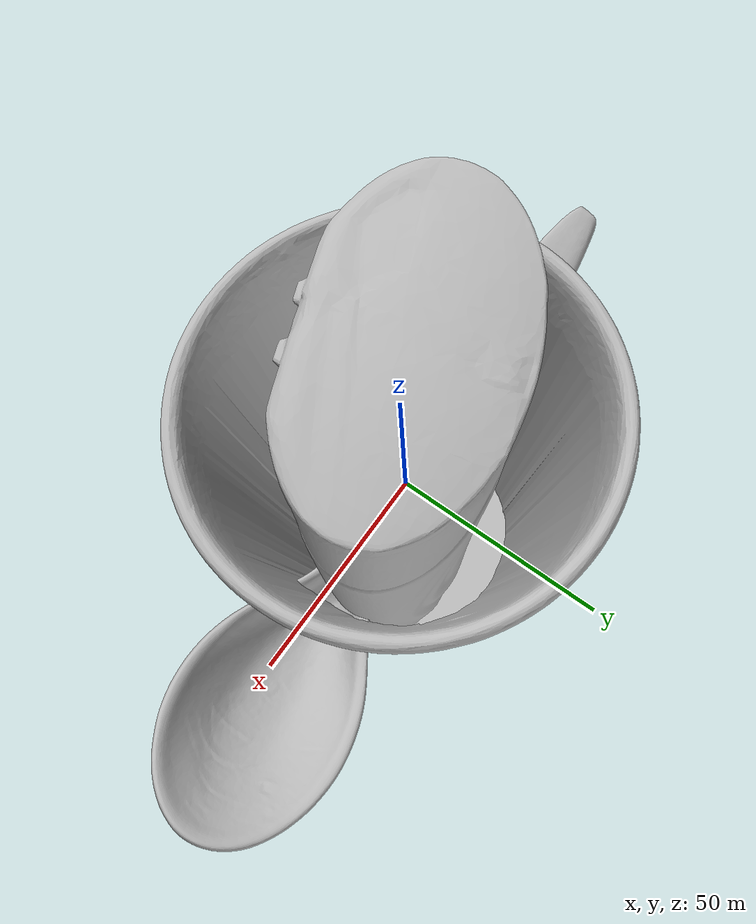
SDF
<sdf version="1.4">
 <world name="default">
  <light name="light1" type="point">
   <pose>0 0 1 0 0 0</pose>
   <diffuse>3 3 3 1</diffuse>
   <specular>3 3 3 1</specular>
  </light>
  <light name="light2" type="point">
   <pose>0 0.5 2 0 0 0</pose>
   <diffuse>1 1 1 1</diffuse>
   <specular>1 1 1 1</specular>
  </light>
  <light name="light3" type="point">
   <pose>0 0.5 2 0 0 0</pose>
   <diffuse>3 3 3 1</diffuse>
   <specular>3 3 3 1</specular>
  </light>
  <scene><ambient>0.7 0.7 0.7</ambient></scene>
  <model name="bottle1">
   <link name="link_bottle1">
    <collision name="default">
     <geometry>
      <mesh><uri>model://conditioner/collision_meshes/collision.obj</uri><scale>1.0 1.0 1.0</scale></mesh>
     </geometry>
     <surface>
      <friction><ode><mu>0.5</mu><mu2>0.5</mu2></ode></friction>
      <contact><ode><max_vel>0</max_vel><min_depth>0.0001</min_depth><kp>1e8</kp></ode></contact>
     </surface>
    </collision>
    <visual name="default">
     <geometry>
      <mesh><uri>model://conditioner/visual_meshes/visual.dae</uri><scale>1.0 1.0 1.0</scale></mesh>
     </geometry>
    </visual>
    <inertial>
     <mass>0.31316134333610535</mass>
     <pose>-0.00055994390277192 -0.0001729748910292983 0.004359682556241751 -0.005038373535624127 0.01530604069317056 0.015072338587352078</pose>
     <inertia>
      <ixx>0.0006812382</ixx>
      <iyy>0.000729753</iyy>
      <izz>0.000105037434</izz>
      <ixy>0</ixy>
      <ixz>0</ixz>
      <iyz>0</iyz>
     </inertia>
    </inertial>
   </link>
   <pose>0.2072129100561142 -0.3486082851886749 0.08122973889112473 0.036892362042576884 -0.015659391546087153 -2.8085352875903133</pose>
  </model>
  <model name="bottle2">
   <link name="link_bottle2">
    <collision name="default">
     <geometry>
      <mesh><uri>model://pigeon/collision_meshes/collision.obj</uri><scale>1.0 1.0 1.0</scale></mesh>
     </geometry>
     <surface>
      <friction><ode><mu>0.5</mu><mu2>0.5</mu2></ode></friction>
      <contact><ode><max_vel>0</max_vel><min_depth>0.0001</min_depth><kp>1e8</kp></ode></contact>
     </surface>
    </collision>
    <visual name="default">
     <geometry><mesh><uri>model://pigeon/visual_meshes/visual.dae</uri><scale>1.0 1.0 1.0</scale></mesh></geometry>
    </visual>
    <inertial>
     <mass>0.6510184407234192</mass>
     <pose>-9.675473847892135e-05 -0.00019276776583865285 -0.01593620888888836 -0.011704407543161608 -0.0012978192378484078 -0.04198827283679603</pose>
     <inertia>
      <ixx>0.0016273881</ixx>
      <iyy>0.0017372583</iyy>
      <izz>0.00033475916</izz>
      <ixy>0</ixy>
      <ixz>0</ixz>
      <iyz>0</iyz>
     </inertia>
    </inertial>
   </link>
   <pose>0.12357347458600998 0.0030198972672224045 0.0986463874578476 0.0036292717375475403 0.0013129286019016048 1.4727197775016803</pose>
  </model>
  <model name="silverware1">
   <link name="link_silverware1">
    <collision name="default">
     <geometry>
      <mesh><uri>model://doraemon_spoon/collision_meshes/collision.obj</uri><scale>1.0 1.0 1.0</scale></mesh>
     </geometry>
     <surface>
      <friction><ode><mu>0.5</mu><mu2>0.5</mu2></ode></friction>
      <contact><ode><max_vel>0</max_vel><min_depth>0.0001</min_depth><kp>1e8</kp></ode></contact>
     </surface>
    </collision>
    <visual name="default">
     <geometry>
      <mesh><uri>model://doraemon_spoon/visual_meshes/visual.dae</uri><scale>1.0 1.0 1.0</scale></mesh>
     </geometry>
    </visual>
    <inertial>
     <mass>0.020366016775369644</mass>
     <pose>-0.022165074944496155 -0.0006374584045261145 -0.0033325462136417627 -0.009147200915366215 0.0738041822243956 -0.014123826891092987</pose>
     <inertia>
      <ixx>1.5952605e-06</ixx>
      <iyy>4.5307766e-05</iyy>
      <izz>4.6078047e-05</izz>
      <ixy>0</ixy>
      <ixz>0</ixz>
      <iyz>0</iyz>
     </inertia>
    </inertial>
   </link>
   <pose>0.034896060824394226 0.32399240136146545 0.01473933830857277 0.27879875337268345 -0.010334269974538315 -3.0717621042155443</pose>
  </model>
  <model name="stationery1">
   <link name="link_stationery1">
    <collision name="default">
     <geometry>
      <mesh><uri>model://correction_fuid/collision_meshes/collision.obj</uri><scale>1.0 1.0 1.0</scale></mesh>
     </geometry>
     <surface>
      <friction><ode><mu>0.5</mu><mu2>0.5</mu2></ode></friction>
      <contact><ode><max_vel>0</max_vel><min_depth>0.0001</min_depth><kp>1e8</kp></ode></contact>
     </surface>
    </collision>
    <visual name="default">
     <geometry>
      <mesh><uri>model://correction_fuid/visual_meshes/visual.dae</uri><scale>1.0 1.0 1.0</scale></mesh>
     </geometry>
    </visual>
    <inertial>
     <mass>0.02487199380993843</mass>
     <pose>-0.00012557733862195164 -0.0009722901741042733 -0.001618212671019137 -0.010846607936808557 0.019488255039962172 -0.015992454917835536</pose>
     <inertia>
      <ixx>2.4088951e-05</ixx>
      <iyy>1.4578937e-06</iyy>
      <izz>2.4715917e-05</izz>
      <ixy>0</ixy>
      <ixz>0</ixz>
      <iyz>0</iyz>
     </inertia>
    </inertial>
   </link>
   <pose>-0.041182830929756165 -0.028869373723864555 0.00963279977440834 -0.001732966994543628 -0.056140538849574054 -2.3266996848036348</pose>
  </model>
  <model name="bowl1">
   <link name="link_bowl1">
    <collision name="default">
     <geometry>
      <mesh><uri>model://doraemon_bowl/collision_meshes/collision.obj</uri><scale>1.0 1.0 1.0</scale></mesh>
     </geometry>
     <surface>
      <friction><ode><mu>0.5</mu><mu2>0.5</mu2></ode></friction>
      <contact><ode><max_vel>0</max_vel><min_depth>0.0001</min_depth><kp>1e8</kp></ode></contact>
     </surface>
    </collision>
    <visual name="default">
     <geometry>
      <mesh><uri>model://doraemon_bowl/visual_meshes/visual.dae</uri><scale>1.0 1.0 1.0</scale></mesh>
     </geometry>
    </visual>
    <inertial>
     <mass>0.06713785231113434</mass>
     <pose>-0.014629548415541649 0.000485710974317044 -0.0020864871330559254 -0.005093962398800634 -0.10568405274446478 -0.026426476578293747</pose>
     <inertia>
      <ixx>9.309732e-05</ixx>
      <iyy>0.00012251528</iyy>
      <izz>0.00018024874</izz>
      <ixy>0</ixy>
      <ixz>0</ixz>
      <iyz>0</iyz>
     </inertia>
    </inertial>
   </link>
   <pose>-0.04669518396258354 0.21520563960075378 0.025904346257448196 0.008590643927740886 0.006408205808063449 -2.153505610454261</pose>
  </model>
  <model name="cup1">
   <link name="link_cup1">
    <collision name="default">
     <geometry>
      <mesh><uri>model://hello_kitty_cup/collision_meshes/collision.obj</uri><scale>1.0 1.0 1.0</scale></mesh>
     </geometry>
     <surface>
      <friction><ode><mu>0.5</mu><mu2>0.5</mu2></ode></friction>
      <contact><ode><max_vel>0</max_vel><min_depth>0.0001</min_depth><kp>1e8</kp></ode></contact>
     </surface>
    </collision>
    <visual name="default">
     <geometry>
      <mesh><uri>model://hello_kitty_cup/visual_meshes/visual.dae</uri><scale>1.0 1.0 1.0</scale></mesh>
     </geometry>
    </visual>
    <inertial>
     <mass>0.13384777307510376</mass>
     <pose>0.00027251095161773264 0.00027950218645855784 0.0030449770856648684 0.057791450277227645 0.007964955326408191 -0.02045228086216793</pose>
     <inertia>
      <ixx>0.0001843247</ixx>
      <iyy>0.0001863793</iyy>
      <izz>0.00015541737</izz>
      <ixy>0</ixy>
      <ixz>0</ixz>
      <iyz>0</iyz>
     </inertia>
    </inertial>
   </link>
   <pose>-0.034716010093688965 0.23122844099998474 0.05002708360552788 0.009672767141472404 0.012135748861181767 -1.5020107747159224</pose>
  </model>
  <model name="plate1">
   <link name="link_plate1">
    <collision name="default">
     <geometry>
      <mesh><uri>model://hello_kitty_plate/collision_meshes/collision.obj</uri><scale>1.0 1.0 1.0</scale></mesh>
     </geometry>
     <surface>
      <friction><ode><mu>0.5</mu><mu2>0.5</mu2></ode></friction>
      <contact><ode><max_vel>0</max_vel><min_depth>0.0001</min_depth><kp>1e8</kp></ode></contact>
     </surface>
    </collision>
    <visual name="default">
     <geometry>
      <mesh><uri>model://hello_kitty_plate/visual_meshes/visual.dae</uri><scale>1.0 1.0 1.0</scale></mesh>
     </geometry>
    </visual>
    <inertial>
     <mass>0.0821625292301178</mass>
     <pose>0.0073142931796610355 0.00028937371098436415 -0.0027947186026722193 -0.0001043184795654353 -0.007054440405958318 -0.014449014916312054</pose>
     <inertia>
      <ixx>0.00015843393</ixx>
      <iyy>0.00029901267</iyy>
      <izz>0.00045402072</izz>
      <ixy>0</ixy>
      <ixz>0</ixz>
      <iyz>0</iyz>
     </inertia>
    </inertial>
   </link>
   <pose>-0.007186477072536945 -0.00776100717484951 0.02003185637295246 -0.08925024429056665 0.1007927616362932 -0.37986350722582296</pose>
  </model>
  <physics type="ode">
   <max_contacts>50</max_contacts>
   <ode>
    <solver><type>quick</type><iters>75</iters></solver>
    <constraints>
     <contact_max_correcting_vel>0</contact_max_correcting_vel>
     <contact_surface_layer>0</contact_surface_layer>
    </constraints>
   </ode>
  </physics>
 </world>
</sdf>
